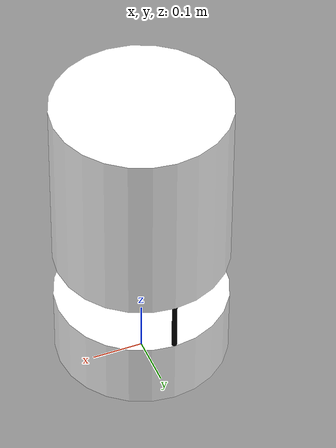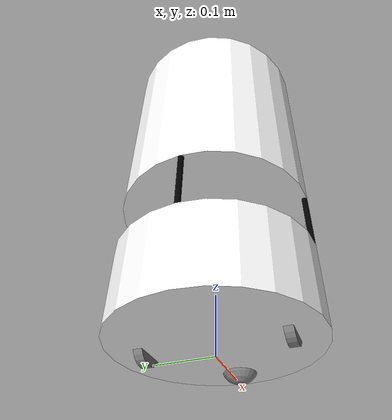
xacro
<?xml version="1.0"?>
<robot xmlns:xacro="http://www.ros.org/wiki/xacro" name="eve_bot">

  <xacro:arg name="sim_mode" default="false" />

  <xacro:include filename="robot.urdf.xacro" />
  <xacro:include filename="lidar.xacro" />
  <xacro:include filename="upbody.xacro" />
  <xacro:include filename="ros2_control.xacro" />
  <xacro:include filename="camera.xacro" />

</robot>

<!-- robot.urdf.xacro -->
<robot name="robot" xmlns:xacro="http://www.ros.org/wiki/xacro">
  <xacro:include filename="inertial_macros.xacro" />

  <material name="white">
   <color rgba="1 1 1 1"/>
  </material>
  <material name="green">
   <color rgba="0 1 0 1"/>
  </material>
  <material name="gray">
   <color rgba="0.5 0.5 0.5 1"/>
  </material>

 <link name="base_footprint"/>

 <!-- Chassis link -->
 <joint name="chassis_joint" type="fixed">
   <parent link="base_footprint"/>
   <child link="chassis"/>
   <origin xyz="0 0 0.087" rpy="0 0 0"/>
</joint>

<link name="chassis">
   <visual>
     <geometry>
       <cylinder radius="0.17" length="0.14"/>
     </geometry>
     <origin xyz="0 0 0" rpy="0 0 0"/>
     <material name="white"/>
   </visual>
   <collision>
     <geometry>
       <cylinder radius="0.17" length="0.14"/>
     </geometry>
     <origin xyz="0 0 0" rpy="0 0 0"/>
   </collision>
   <xacro:cylinder_inertia m="4" r="0.17" l="0.14" o_xyz="0 0 0" o_rpy="0 0 0" />
</link>

<link name="caster_wheel">
   <visual>
      <geometry>
        <sphere radius="0.033"/>
      </geometry>
      <origin xyz="0 0 0" rpy="0 0 0"/>
      <material name="gray"/>
   </visual>
   <collision>
      <geometry>
        <sphere radius="0.033"/>
      </geometry>
      <origin xyz="0 0 0" rpy="0 0 0"/>
   </collision>
   <xacro:sphere_inertia m="0.2" r="0.033" o_xyz="0 0 0" o_rpy="0 0 0" />
</link>

<joint name="caster_wheel_joint" type="fixed">
    <parent link="chassis"/>
    <child link="caster_wheel"/>
    <origin xyz="0.12 0 -0.054" rpy="0 0 0"/>
</joint>

<joint name="left_wheel_joint" type="continuous">
  <parent link="chassis"/>
  <child link="left_wheel"/>
  <origin xyz="0 0.115 -0.054" rpy="1.57 0 0" />
  <axis xyz="0 0 -1"/>
</joint>

<link name="left_wheel">
  <visual>
      <geometry>
          <cylinder radius="0.033" length="0.015"/>
      </geometry>
      <material name="gray"/>
      <origin xyz="0 0 0" rpy="0 0 0" />
  </visual>
  <collision>
    <geometry>
        <cylinder radius="0.033" length="0.015"/>
    </geometry>
    <origin xyz="0 0 0" rpy="0 0 0" />
</collision>
<xacro:cylinder_inertia m="1" r="0.033" l="0.015" o_xyz="0 0 0" o_rpy="0 0 0" />
</link>

<joint name="right_wheel_joint" type="continuous">
  <parent link="chassis"/>
  <child link="right_wheel"/>
  <origin xyz="0 -0.115 -0.054" rpy="1.57 0 0" />
  <axis xyz="0 0 -1"/>
</joint>

<link name="right_wheel">
  <visual>
      <geometry>
          <cylinder radius="0.033" length="0.015"/>
      </geometry>
      <material name="gray"/>
      <origin xyz="0 0 0" rpy="0 0 0" />
  </visual>
  <collision>
    <geometry>
        <cylinder radius="0.033" length="0.015"/>
    </geometry>
    <origin xyz="0 0 0" rpy="0 0 0" />
</collision>
<xacro:cylinder_inertia m="1" r="0.033" l="0.015" o_xyz="0 0 0" o_rpy="0 0 0" />
</link>

</robot>

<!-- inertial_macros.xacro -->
<robot xmlns:xacro="http://www.ros.org/wiki/xacro">

    <xacro:macro name="box_inertia" params="m x y z o_xyz o_rpy">
        <inertial>
            <mass value="${m}" />
            <origin xyz="${o_xyz}" rpy="${o_rpy}" />
            <inertia ixx="${(m/12) * (z*z + y*y)}" ixy="0" ixz="0"
                    iyy="${(m/12) * (x*x + z*z)}" iyz="0"
                    izz="${(m/12) * (x*x + y*y)}" />
        </inertial>
    </xacro:macro>

    <xacro:macro name="cylinder_inertia" params="m r l o_xyz o_rpy">
        <inertial>
            <mass value="${m}" />
            <origin xyz="${o_xyz}" rpy="${o_rpy}" />
            <inertia ixx="${(m/12) * (3*r*r + l*l)}" ixy="0" ixz="0"
                    iyy="${(m/12) * (3*r*r + l*l)}" iyz="0"
                    izz="${(m/2) * (r*r)}" />
        </inertial>
    </xacro:macro>

    <xacro:macro name="sphere_inertia" params="m r o_xyz o_rpy">
        <inertial>
            <mass value="${m}" />
            <origin xyz="${o_xyz}" rpy="${o_rpy}" />
            <inertia ixx="${(2/5) * m * r * r}" ixy="0" ixz="0"
                    iyy="${(2/5) * m * r * r}" iyz="0"
                    izz="${(2/5) * m * r * r}" />
        </inertial>
    </xacro:macro>

</robot>

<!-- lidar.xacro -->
<robot xmlns:xacro="http://www.ros.org/wiki/xacro" >

    <material name="black">
     <color rgba="0 0 0 1"/>
   </material>

    <joint name="laser_joint" type="fixed">
        <parent link="chassis"/>
        <child link="laser_frame"/>
        <origin xyz="0 0 0.095" rpy="0 0 0"/>
    </joint>

    <link name="laser_frame">
        <visual>
            <origin xyz="0 0 0"/>
            <geometry>
                <cylinder radius="0.034" length="0.05"/>
            </geometry>
            <material name="black"/>
        </visual>
        <collision>
            <geometry>
                <cylinder radius="0.034" length="0.05"/>
            </geometry>
        </collision>
        <xacro:cylinder_inertia m="1" r="0.034" l="0.05" o_xyz="0 0 0" o_rpy="0 0 0" />
    </link>

</robot>

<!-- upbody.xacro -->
<robot xmlns:xacro="http://www.ros.org/wiki/xacro" >

    <material name="blac">
     <color rgba="0 0 0 1"/>
   </material>

   <material name="whit">
    <color rgba="1 1 1 1"/>
   </material>

    <joint name="leftcol_joint" type="fixed">
        <parent link="chassis"/>
        <child link="leftcol_frame"/>
        <origin xyz="0 0.165 0.12" rpy="0 0 0"/>
    </joint>

    <link name="leftcol_frame">
        <visual>
            <origin xyz="0 0 0"/>
            <geometry>
                <cylinder radius="0.005" length="0.10"/>
            </geometry>
            <material name="blac"/>
        </visual>
        <collision>
            <geometry>
                <cylinder radius="0.005" length="0.1"/>
            </geometry>
        </collision>
        <xacro:cylinder_inertia m="1" r="0.005" l="0.1" o_xyz="0 0 0" o_rpy="0 0 0" />
    </link>

    <joint name="rightcol_joint" type="fixed">
        <parent link="chassis"/>
        <child link="rightcol_frame"/>
        <origin xyz="0 -0.165 0.12" rpy="0 0 0"/>
    </joint>

    <link name="rightcol_frame">
        <visual>
            <origin xyz="0 0 0"/>
            <geometry>
                <cylinder radius="0.005" length="0.10"/>
            </geometry>
            <material name="blac"/>
        </visual>
        <collision>
            <geometry>
                <cylinder radius="0.005" length="0.1"/>
            </geometry>
        </collision>
        <xacro:cylinder_inertia m="1" r="0.005" l="0.1" o_xyz="0 0 0" o_rpy="0 0 0" />
    </link>

    <joint name="backcol_joint" type="fixed">
        <parent link="chassis"/>
        <child link="backcol_frame"/>
        <origin xyz="-0.165 0 0.12" rpy="0 0 0"/>
    </joint>

    <link name="backcol_frame">
        <visual>
            <origin xyz="0 0 0"/>
            <geometry>
                <cylinder radius="0.005" length="0.10"/>
            </geometry>
            <material name="blac"/>
        </visual>
        <collision>
            <geometry>
                <cylinder radius="0.005" length="0.1"/>
            </geometry>
        </collision>
        <xacro:cylinder_inertia m="1" r="0.005" l="0.1" o_xyz="0 0 0" o_rpy="0 0 0" />
    </link>

    <joint name="body_joint" type="fixed">
        <parent link="backcol_frame"/>
        <child link="body_frame"/>
        <origin xyz="0.165 0 0.23" rpy="0 0 0"/>
    </joint>

    <link name="body_frame">
        <visual>
            <origin xyz="0 0 0"/>
            <geometry>
                <cylinder radius="0.17" length="0.36"/>
            </geometry>
            <material name="whit"/>
        </visual>
        <collision>
            <geometry>
                <cylinder radius="0.17" length="0.36"/>
            </geometry>
        </collision>
        <xacro:cylinder_inertia m="1" r="0.17" l="0.36" o_xyz="0 0 0" o_rpy="0 0 0" />
    </link>

</robot>

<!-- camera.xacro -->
<robot xmlns:xacro="http://www.ros.org/wiki/xacro" >

    <material name="camera_color">
     <color rgba="0 0 0 1"/>
   </material>

    <joint name="camera_joint" type="fixed">
        <parent link="body_frame"/>
        <child link="camera_frame"/>
        <origin xyz="0.135 0 0" rpy="0 0 0"/>
    </joint>

    <link name="camera_frame">
        <visual>
            <geometry>
                <box size="0.01 0.03 0.03"/>
            </geometry>
            <material name="black"/>
        </visual>
        <!--because is too small no collision or inertial-->
    </link>

    <joint name="camera_optical_joint" type="fixed">
        <parent link="camera_frame"/>
        <child link="camera_frame_optical"/>
        <origin xyz="0 0 0" rpy="-1.57 0 -1.57"/>
    </joint>

    <link name="camera_frame_optical"></link>

</robot>
